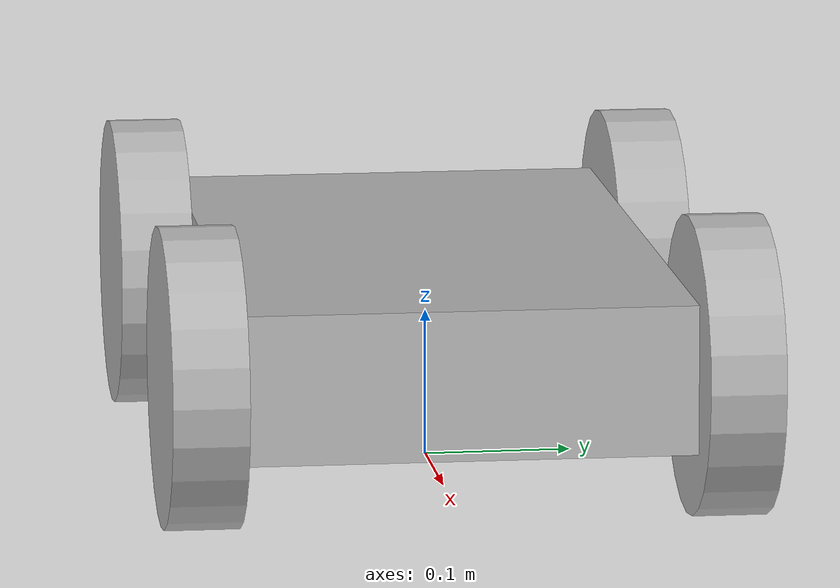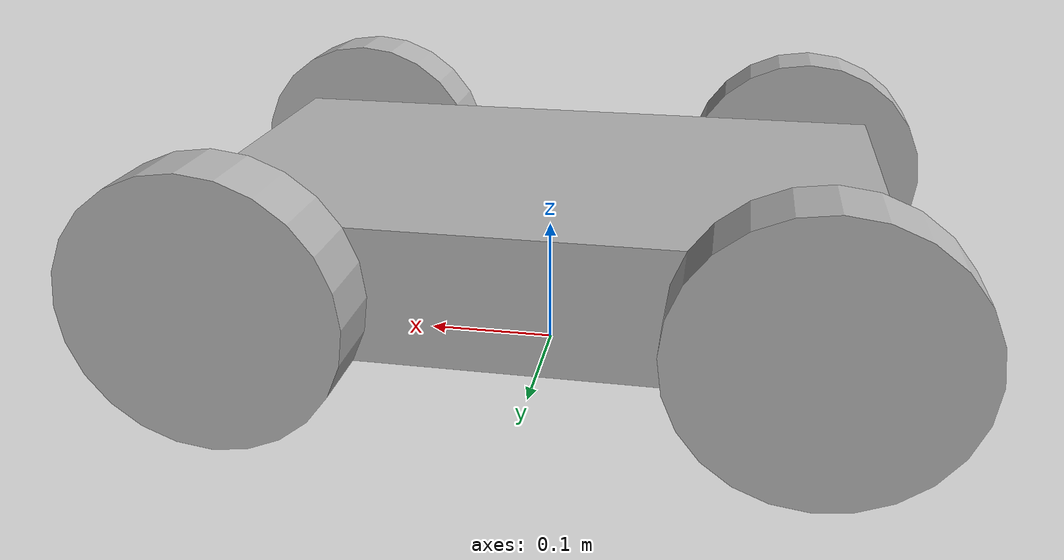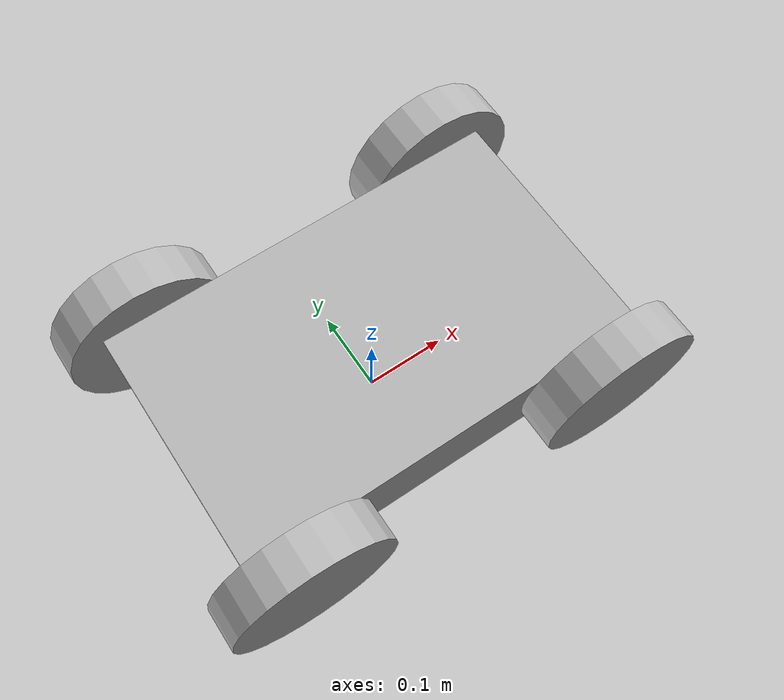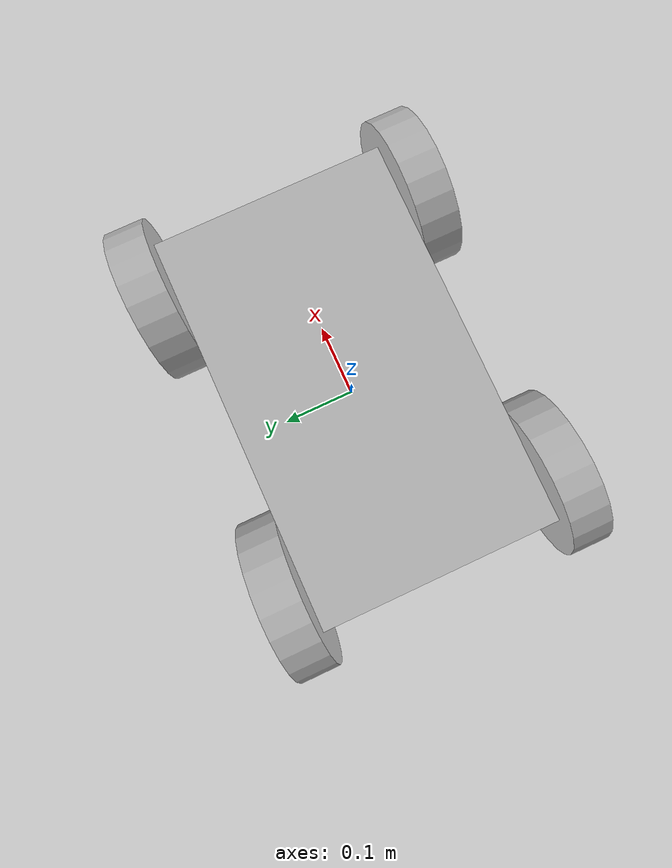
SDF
<?xml version='1.0'?>
<sdf version='1.4'>
  <model name="my_robot">

    <static>false</static>

    <!-- Chassis Link -->
    <link name='chassis'>
      <pose>0 0 .1 0 0 0</pose>
      <!-- 질량 및 관성 요소 추가 -->
      <inertial>
        <mass>10.0</mass>        <!-- 질량 설정 -->
        <inertia>
          <ixx>0.1</ixx>
          <ixy>0.0</ixy>
          <ixz>0.0</ixz>
          <iyy>0.1</iyy>
          <iyz>0.0</iyz>
          <izz>0.1</izz>
        </inertia>
      </inertial>
      <collision name='collision'>
        <geometry>
          <box>
            <size>.5 .3 .1</size>
          </box>
        </geometry>
      </collision>
      <visual name='visual'>
        <geometry>
          <box>
            <size>.5 .3 .1</size>
          </box>
        </geometry>
      </visual>
    </link>

    <!-- rear left Wheel Link -->
    <link name="rear_left_wheel">
      <pose>.2 .175 .1 1.5708 0 0</pose>
      <!-- 질량 및 관성 요소 추가 -->
      <inertial>
        <mass>0.5</mass>        <!-- 질량 설정 -->
        <inertia>
          <ixx>0.01</ixx>
          <ixy>0.0</ixy>
          <ixz>0.0</ixz>
          <iyy>0.01</iyy>
          <iyz>0.0</iyz>
          <izz>0.01</izz>
        </inertia>
      </inertial>
      <collision name="collision">
        <geometry>
          <cylinder>
            <radius>.1</radius>
            <length>.05</length>
          </cylinder>
        </geometry>
      </collision>
      <surface>
        <friction>
          <ode>
            <mu>1.0</mu>
            <mu2>1.0</mu2>
          </ode>
        </friction>
      </surface>
      <visual name="visual">
        <geometry>
          <cylinder>
            <radius>.1</radius>
            <length>.05</length>
          </cylinder>
        </geometry>
      </visual>
    </link>

    <!-- Joint_rear_left -->
    <joint name="joint_rl" type="revolute">
      <pose>0 0 .025 0 0 0</pose>
      <parent>chassis</parent>
      <child>rear_left_wheel</child>
      <axis>
        <xyz>0 1 0</xyz>
      </axis>
    </joint>

    <!-- rear right Wheel Link -->
    <link name="rear_right_wheel">
      <pose>.2 -.175 .1 1.5708 0 0</pose>
      <!-- 질량 및 관성 요소 추가 -->
      <inertial>
        <mass>0.5</mass>        <!-- 질량 설정 -->
        <inertia>
          <ixx>0.01</ixx>
          <ixy>0.0</ixy>
          <ixz>0.0</ixz>
          <iyy>0.01</iyy>
          <iyz>0.0</iyz>
          <izz>0.01</izz>
        </inertia>
      </inertial>
      <collision name="collision">
        <geometry>
          <cylinder>
            <radius>.1</radius>
            <length>.05</length>
          </cylinder>
        </geometry>
      </collision>
      <surface>
        <friction>
          <ode>
            <mu>1.0</mu>
            <mu2>1.0</mu2>
          </ode>
        </friction>
      </surface>
      <visual name="visual">
        <geometry>
          <cylinder>
            <radius>.1</radius>
            <length>.05</length>
          </cylinder>
        </geometry>
      </visual>
    </link>

    <!-- Joint_rear_right -->
    <joint name="joint_rr" type="revolute">
      <pose>0 0 -.025 0 0 0</pose>
      <parent>chassis</parent>
      <child>rear_right_wheel</child>
      <axis>
        <xyz>0 1 0</xyz>
      </axis>
    </joint>

    <!-- front left Wheel Link -->
    <link name="front_left_wheel">
      <pose>-.2 .175 .1 1.5708 0 0</pose>
      <!-- 질량 및 관성 요소 추가 -->
      <inertial>
        <mass>0.5</mass>        <!-- 질량 설정 -->
        <inertia>
          <ixx>0.01</ixx>
          <ixy>0.0</ixy>
          <ixz>0.0</ixz>
          <iyy>0.01</iyy>
          <iyz>0.0</iyz>
          <izz>0.01</izz>
        </inertia>
      </inertial>
      <collision name="collision">
        <geometry>
          <cylinder>
            <radius>.1</radius>
            <length>.05</length>
          </cylinder>
        </geometry>
      </collision>
      <surface>
        <friction>
          <ode>
            <mu>1.0</mu>
            <mu2>1.0</mu2>
          </ode>
        </friction>
      </surface>
      <visual name="visual">
        <geometry>
          <cylinder>
            <radius>.1</radius>
            <length>.05</length>
          </cylinder>
        </geometry>
      </visual>
    </link>

    <!-- Joint_front_left -->
    <joint name="joint_fl" type="revolute">
      <pose>0 0 .025 0 0 0</pose>
      <parent>chassis</parent>
      <child>front_left_wheel</child>
      <axis>
        <xyz>0 1 0</xyz>
      </axis>
    </joint>

    <!-- front right Wheel Link -->
    <link name="front_right_wheel">
      <pose>-.2 -.175 .1 1.5708 0 0</pose>
      <!-- 질량 및 관성 요소 추가 -->
      <inertial>
        <mass>0.5</mass>        <!-- 질량 설정 -->
        <inertia>
          <ixx>0.01</ixx>
          <ixy>0.0</ixy>
          <ixz>0.0</ixz>
          <iyy>0.01</iyy>
          <iyz>0.0</iyz>
          <izz>0.01</izz>
        </inertia>
      </inertial>
      <collision name="collision">
        <geometry>
          <cylinder>
            <radius>.1</radius>
            <length>.05</length>
          </cylinder>
        </geometry>
      </collision>
      <surface>
        <friction>
          <ode>
            <mu>1.0</mu>
            <mu2>1.0</mu2>
          </ode>
        </friction>
      </surface>
      <visual name="visual">
        <geometry>
          <cylinder>
            <radius>.1</radius>
            <length>.05</length>
          </cylinder>
        </geometry>
      </visual>
    </link>

    <!-- Joint_front_right -->
    <joint name="joint_fr" type="revolute">
      <pose>0 0 -.025 0 0 0</pose>
      <parent>chassis</parent>
      <child>front_right_wheel</child>
      <axis>
        <xyz>0 1 0</xyz>
      </axis>
    </joint>

    <!-- manipulator -->

    <!-- Joint 1 -->

    <!-- link 1 -->

    <!-- Joint_connection_1 -->

    <!-- connection_1 -->

    <!-- Joint_connection_2 -->

    <!-- link 2 -->

    <!-- Joint 2 -->

    <!-- connection_2 -->

    <!-- Joint_connection_3 -->

    <!-- link 3 -->

    <!-- Joint 3 -->

    <!-- link 4 -->

    <!-- Joint 4 -->

    <!-- link 5 -->

    <!-- Joint 5 -->

    <!-- link 6-->

    <!-- Joint 6 -->

    <!-- Gripper link 1 -->

    <!-- Gripper joint 1 -->

    <!-- Gripper link 2 -->

    <!-- Gripper joint 2 -->

    <!-- Camera -->

    <!-- base_link와 camera_link를 연결하는 조인트 정의 -->

    <!-- Joint State Publisher Plugin -->

    <!-- Diff Drive Plugin -->
    <plugin name="diff_drive_front" filename="libgazebo_ros_diff_drive.so">
      <ros>
        <namespace>/</namespace>
        <remapping>cmd_vel:=/cmd_vel</remapping>
      </ros>
      <robotNamespace>my_robot</robotNamespace>
      <left_joint>joint_fl</left_joint>
      <right_joint>joint_fr</right_joint>
      <wheel_separation>0.3</wheel_separation>
      <wheel_diameter>0.2</wheel_diameter>
      <maxTorque>10.0</maxTorque>
      <maxVelocity>10.0</maxVelocity>
      <topic>/cmd_vel</topic>
      <odometryFrame>odom</odometryFrame>
      <odometryTopic>/odom</odometryTopic>
    </plugin>

    <plugin name="diff_drive_rear" filename="libgazebo_ros_diff_drive.so">
      <ros>
        <namespace>/</namespace>
        <remapping>cmd_vel:=/cmd_vel</remapping>
      </ros>
      <robotNamespace>my_robot</robotNamespace>
      <left_joint>joint_rl</left_joint>
      <right_joint>joint_rr</right_joint>
      <wheel_separation>0.3</wheel_separation>
      <wheel_diameter>0.2</wheel_diameter>
      <maxTorque>10.0</maxTorque>
      <maxVelocity>10.0</maxVelocity>
      <topic>/cmd_vel</topic>
      <odometryFrame>odom</odometryFrame>
      <odometryTopic>/odom</odometryTopic>
    </plugin>

  </model>
</sdf>
